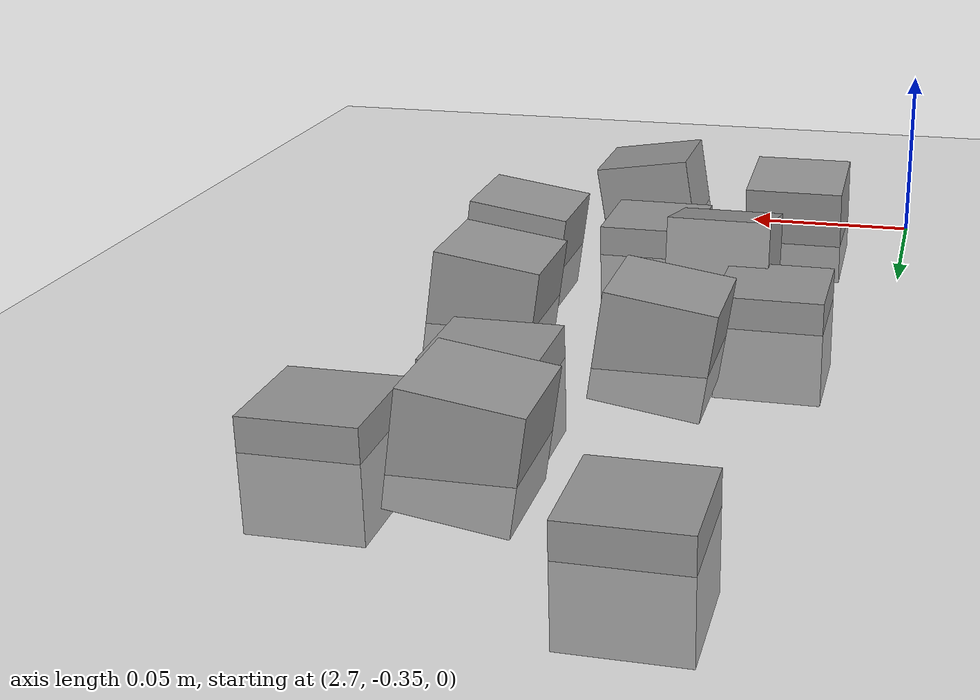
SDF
<sdf version="1.7">
 <world name="default">
  <model name="ground_plane">
   <static>1</static>
   <link name="link">
    <collision name="collision">
     <geometry><plane><normal>0 0 1</normal><size>100 100</size></plane></geometry>
     <surface><friction><ode><mu>100</mu><mu2>50</mu2></ode></friction></surface>
    </collision>
    <visual name="visual">
     <cast_shadows>0</cast_shadows>
     <geometry><plane><normal>0 0 1</normal><size>100 100</size></plane></geometry>
     <material>
      <script><uri>file://media/materials/scripts/gazebo.material</uri><name>Gazebo/Grey</name></script>
     </material>
    </visual>
   </link>
  </model>
  <model name="stone_road_9">
   <link name="link_0_clone_11">
    <inertial>
     <mass>1</mass>
     <inertia>
      <ixx>0.166667</ixx>
      <ixy>0</ixy>
      <ixz>0</ixz>
      <iyy>0.166667</iyy>
      <iyz>0</iyz>
      <izz>0.166667</izz>
     </inertia>
    </inertial>
    <pose>0.007758 0.071496 0.003778 0.2 -0 0</pose>
    <kinematic>1</kinematic>
    <visual name="visual">
     <geometry><box><size>0.03 0.03 0.03</size></box></geometry>
     <material>
      <lighting>1</lighting>
      <script><uri>file://media/materials/scripts/gazebo.material</uri><name>Gazebo/Grey</name></script>
      <shader type="pixel"><normal_map>__default__</normal_map></shader>
      <ambient>0.3 0.3 0.3 1</ambient>
      <diffuse>0.7 0.7 0.7 1</diffuse>
      <specular>0.01 0.01 0.01 1</specular>
      <emissive>0 0 0 1</emissive>
     </material>
    </visual>
    <collision name="collision">
     <geometry><box><size>0.03 0.03 0.03</size></box></geometry>
     <surface>
      <friction>
       <ode><mu>1</mu><mu2>1</mu2><fdir1>0 0 0</fdir1><slip1>0</slip1><slip2>0</slip2></ode>
       <torsional>
        <coefficient>1</coefficient>
        <patch_radius>0</patch_radius>
        <surface_radius>0</surface_radius>
        <use_patch_radius>1</use_patch_radius>
        <ode><slip>0</slip></ode>
       </torsional>
      </friction>
      <bounce><restitution_coefficient>0</restitution_coefficient><threshold>1e+06</threshold></bounce>
      <contact>
       <collide_without_contact>0</collide_without_contact>
       <collide_without_contact_bitmask>1</collide_without_contact_bitmask>
       <collide_bitmask>1</collide_bitmask>
       <ode>
        <soft_cfm>0</soft_cfm>
        <soft_erp>0.2</soft_erp>
        <kp>1e+13</kp>
        <kd>1</kd>
        <max_vel>0.01</max_vel>
        <min_depth>0</min_depth>
       </ode>
       <bullet>
        <split_impulse>1</split_impulse>
        <split_impulse_penetration_threshold>-0.01</split_impulse_penetration_threshold>
        <soft_cfm>0</soft_cfm>
        <soft_erp>0.2</soft_erp>
        <kp>1e+13</kp>
        <kd>1</kd>
       </bullet>
      </contact>
     </surface>
    </collision>
   </link>
   <link name="link_0_clone_2_clone_1">
    <inertial>
     <mass>1</mass>
     <inertia>
      <ixx>0.166667</ixx>
      <ixy>0</ixy>
      <ixz>0</ixz>
      <iyy>0.166667</iyy>
      <iyz>0</iyz>
      <izz>0.166667</izz>
     </inertia>
    </inertial>
    <pose>0.041447 0.006316 0.003778 0 0.15 0</pose>
    <kinematic>1</kinematic>
    <visual name="visual">
     <geometry><box><size>0.03 0.03 0.03</size></box></geometry>
     <material>
      <lighting>1</lighting>
      <script><uri>file://media/materials/scripts/gazebo.material</uri><name>Gazebo/Grey</name></script>
      <shader type="pixel"><normal_map>__default__</normal_map></shader>
      <ambient>0.3 0.3 0.3 1</ambient>
      <diffuse>0.7 0.7 0.7 1</diffuse>
      <specular>0.01 0.01 0.01 1</specular>
      <emissive>0 0 0 1</emissive>
     </material>
    </visual>
    <collision name="collision">
     <geometry><box><size>0.03 0.03 0.03</size></box></geometry>
     <surface>
      <friction>
       <ode><mu>1</mu><mu2>1</mu2><fdir1>0 0 0</fdir1><slip1>0</slip1><slip2>0</slip2></ode>
       <torsional>
        <coefficient>1</coefficient>
        <patch_radius>0</patch_radius>
        <surface_radius>0</surface_radius>
        <use_patch_radius>1</use_patch_radius>
        <ode><slip>0</slip></ode>
       </torsional>
      </friction>
      <bounce><restitution_coefficient>0</restitution_coefficient><threshold>1e+06</threshold></bounce>
      <contact>
       <collide_without_contact>0</collide_without_contact>
       <collide_without_contact_bitmask>1</collide_without_contact_bitmask>
       <collide_bitmask>1</collide_bitmask>
       <ode>
        <soft_cfm>0</soft_cfm>
        <soft_erp>0.2</soft_erp>
        <kp>1e+13</kp>
        <kd>1</kd>
        <max_vel>0.01</max_vel>
        <min_depth>0</min_depth>
       </ode>
       <bullet>
        <split_impulse>1</split_impulse>
        <split_impulse_penetration_threshold>-0.01</split_impulse_penetration_threshold>
        <soft_cfm>0</soft_cfm>
        <soft_erp>0.2</soft_erp>
        <kp>1e+13</kp>
        <kd>1</kd>
       </bullet>
      </contact>
     </surface>
    </collision>
   </link>
   <link name="link_0_clone_2_clone_2">
    <inertial>
     <mass>1</mass>
     <inertia>
      <ixx>0.166667</ixx>
      <ixy>0</ixy>
      <ixz>0</ixz>
      <iyy>0.166667</iyy>
      <iyz>0</iyz>
      <izz>0.166667</izz>
     </inertia>
    </inertial>
    <pose>0.066563 0.110568 0.003778 0 -0.15 0</pose>
    <kinematic>1</kinematic>
    <visual name="visual">
     <geometry><box><size>0.03 0.03 0.03</size></box></geometry>
     <material>
      <lighting>1</lighting>
      <script><uri>file://media/materials/scripts/gazebo.material</uri><name>Gazebo/Grey</name></script>
      <shader type="pixel"><normal_map>__default__</normal_map></shader>
      <ambient>0.3 0.3 0.3 1</ambient>
      <diffuse>0.7 0.7 0.7 1</diffuse>
      <specular>0.01 0.01 0.01 1</specular>
      <emissive>0 0 0 1</emissive>
     </material>
    </visual>
    <collision name="collision">
     <geometry><box><size>0.03 0.03 0.03</size></box></geometry>
     <surface>
      <friction>
       <ode><mu>1</mu><mu2>1</mu2><fdir1>0 0 0</fdir1><slip1>0</slip1><slip2>0</slip2></ode>
       <torsional>
        <coefficient>1</coefficient>
        <patch_radius>0</patch_radius>
        <surface_radius>0</surface_radius>
        <use_patch_radius>1</use_patch_radius>
        <ode><slip>0</slip></ode>
       </torsional>
      </friction>
      <bounce><restitution_coefficient>0</restitution_coefficient><threshold>1e+06</threshold></bounce>
      <contact>
       <collide_without_contact>0</collide_without_contact>
       <collide_without_contact_bitmask>1</collide_without_contact_bitmask>
       <collide_bitmask>1</collide_bitmask>
       <ode>
        <soft_cfm>0</soft_cfm>
        <soft_erp>0.2</soft_erp>
        <kp>1e+13</kp>
        <kd>1</kd>
        <max_vel>0.01</max_vel>
        <min_depth>0</min_depth>
       </ode>
       <bullet>
        <split_impulse>1</split_impulse>
        <split_impulse_penetration_threshold>-0.01</split_impulse_penetration_threshold>
        <soft_cfm>0</soft_cfm>
        <soft_erp>0.2</soft_erp>
        <kp>1e+13</kp>
        <kd>1</kd>
       </bullet>
      </contact>
     </surface>
    </collision>
   </link>
   <link name="link_0_clone_2_clone_2_clone_12">
    <inertial>
     <mass>1</mass>
     <inertia>
      <ixx>0.166667</ixx>
      <ixy>0</ixy>
      <ixz>0</ixz>
      <iyy>0.166667</iyy>
      <iyz>0</iyz>
      <izz>0.166667</izz>
     </inertia>
    </inertial>
    <pose>0.044693 0.200081 0.003778 0 -0.15 0</pose>
    <kinematic>1</kinematic>
    <visual name="visual">
     <geometry><box><size>0.03 0.03 0.03</size></box></geometry>
     <material>
      <lighting>1</lighting>
      <script><uri>file://media/materials/scripts/gazebo.material</uri><name>Gazebo/Grey</name></script>
      <shader type="pixel"><normal_map>__default__</normal_map></shader>
      <ambient>0.3 0.3 0.3 1</ambient>
      <diffuse>0.7 0.7 0.7 1</diffuse>
      <specular>0.01 0.01 0.01 1</specular>
      <emissive>0 0 0 1</emissive>
     </material>
    </visual>
    <collision name="collision">
     <geometry><box><size>0.03 0.03 0.03</size></box></geometry>
     <surface>
      <friction>
       <ode><mu>1</mu><mu2>1</mu2><fdir1>0 0 0</fdir1><slip1>0</slip1><slip2>0</slip2></ode>
       <torsional>
        <coefficient>1</coefficient>
        <patch_radius>0</patch_radius>
        <surface_radius>0</surface_radius>
        <use_patch_radius>1</use_patch_radius>
        <ode><slip>0</slip></ode>
       </torsional>
      </friction>
      <bounce><restitution_coefficient>0</restitution_coefficient><threshold>1e+06</threshold></bounce>
      <contact>
       <collide_without_contact>0</collide_without_contact>
       <collide_without_contact_bitmask>1</collide_without_contact_bitmask>
       <collide_bitmask>1</collide_bitmask>
       <ode>
        <soft_cfm>0</soft_cfm>
        <soft_erp>0.2</soft_erp>
        <kp>1e+13</kp>
        <kd>1</kd>
        <max_vel>0.01</max_vel>
        <min_depth>0</min_depth>
       </ode>
       <bullet>
        <split_impulse>1</split_impulse>
        <split_impulse_penetration_threshold>-0.01</split_impulse_penetration_threshold>
        <soft_cfm>0</soft_cfm>
        <soft_erp>0.2</soft_erp>
        <kp>1e+13</kp>
        <kd>1</kd>
       </bullet>
      </contact>
     </surface>
    </collision>
   </link>
   <link name="link_0_clone_2_clone_2_clone_13">
    <inertial>
     <mass>1</mass>
     <inertia>
      <ixx>0.166667</ixx>
      <ixy>0</ixy>
      <ixz>0</ixz>
      <iyy>0.166667</iyy>
      <iyz>0</iyz>
      <izz>0.166667</izz>
     </inertia>
    </inertial>
    <pose>0.014407 0.13189 0.003778 0 -0.15 0</pose>
    <kinematic>1</kinematic>
    <visual name="visual">
     <geometry><box><size>0.03 0.03 0.03</size></box></geometry>
     <material>
      <lighting>1</lighting>
      <script><uri>file://media/materials/scripts/gazebo.material</uri><name>Gazebo/Grey</name></script>
      <shader type="pixel"><normal_map>__default__</normal_map></shader>
      <ambient>0.3 0.3 0.3 1</ambient>
      <diffuse>0.7 0.7 0.7 1</diffuse>
      <specular>0.01 0.01 0.01 1</specular>
      <emissive>0 0 0 1</emissive>
     </material>
    </visual>
    <collision name="collision">
     <geometry><box><size>0.03 0.03 0.03</size></box></geometry>
     <surface>
      <friction>
       <ode><mu>1</mu><mu2>1</mu2><fdir1>0 0 0</fdir1><slip1>0</slip1><slip2>0</slip2></ode>
       <torsional>
        <coefficient>1</coefficient>
        <patch_radius>0</patch_radius>
        <surface_radius>0</surface_radius>
        <use_patch_radius>1</use_patch_radius>
        <ode><slip>0</slip></ode>
       </torsional>
      </friction>
      <bounce><restitution_coefficient>0</restitution_coefficient><threshold>1e+06</threshold></bounce>
      <contact>
       <collide_without_contact>0</collide_without_contact>
       <collide_without_contact_bitmask>1</collide_without_contact_bitmask>
       <collide_bitmask>1</collide_bitmask>
       <ode>
        <soft_cfm>0</soft_cfm>
        <soft_erp>0.2</soft_erp>
        <kp>1e+13</kp>
        <kd>1</kd>
        <max_vel>0.01</max_vel>
        <min_depth>0</min_depth>
       </ode>
       <bullet>
        <split_impulse>1</split_impulse>
        <split_impulse_penetration_threshold>-0.01</split_impulse_penetration_threshold>
        <soft_cfm>0</soft_cfm>
        <soft_erp>0.2</soft_erp>
        <kp>1e+13</kp>
        <kd>1</kd>
       </bullet>
      </contact>
     </surface>
    </collision>
   </link>
   <link name="link_0_clone_2_clone_2_clone_13_clone_clone_16_clone">
    <inertial>
     <mass>1</mass>
     <inertia>
      <ixx>0.166667</ixx>
      <ixy>0</ixy>
      <ixz>0</ixz>
      <iyy>0.166667</iyy>
      <iyz>0</iyz>
      <izz>0.166667</izz>
     </inertia>
    </inertial>
    <pose>0.0535 0.156403 -0.006222 0 -0 0</pose>
    <kinematic>1</kinematic>
    <visual name="visual">
     <geometry><box><size>0.03 0.03 0.03</size></box></geometry>
     <material>
      <lighting>1</lighting>
      <script><uri>file://media/materials/scripts/gazebo.material</uri><name>Gazebo/Grey</name></script>
      <shader type="pixel"><normal_map>__default__</normal_map></shader>
      <ambient>0.3 0.3 0.3 1</ambient>
      <diffuse>0.7 0.7 0.7 1</diffuse>
      <specular>0.01 0.01 0.01 1</specular>
      <emissive>0 0 0 1</emissive>
     </material>
    </visual>
    <collision name="collision">
     <geometry><box><size>0.03 0.03 0.03</size></box></geometry>
     <surface>
      <friction>
       <ode><mu>1</mu><mu2>1</mu2><fdir1>0 0 0</fdir1><slip1>0</slip1><slip2>0</slip2></ode>
       <torsional>
        <coefficient>1</coefficient>
        <patch_radius>0</patch_radius>
        <surface_radius>0</surface_radius>
        <use_patch_radius>1</use_patch_radius>
        <ode><slip>0</slip></ode>
       </torsional>
      </friction>
      <bounce><restitution_coefficient>0</restitution_coefficient><threshold>1e+06</threshold></bounce>
      <contact>
       <collide_without_contact>0</collide_without_contact>
       <collide_without_contact_bitmask>1</collide_without_contact_bitmask>
       <collide_bitmask>1</collide_bitmask>
       <ode>
        <soft_cfm>0</soft_cfm>
        <soft_erp>0.2</soft_erp>
        <kp>1e+13</kp>
        <kd>1</kd>
        <max_vel>0.01</max_vel>
        <min_depth>0</min_depth>
       </ode>
       <bullet>
        <split_impulse>1</split_impulse>
        <split_impulse_penetration_threshold>-0.01</split_impulse_penetration_threshold>
        <soft_cfm>0</soft_cfm>
        <soft_erp>0.2</soft_erp>
        <kp>1e+13</kp>
        <kd>1</kd>
       </bullet>
      </contact>
     </surface>
    </collision>
   </link>
   <link name="link_0_clone_2_clone_2_clone_13_clone_clone_16_clone_0">
    <inertial>
     <mass>1</mass>
     <inertia>
      <ixx>0.166667</ixx>
      <ixy>0</ixy>
      <ixz>0</ixz>
      <iyy>0.166667</iyy>
      <iyz>0</iyz>
      <izz>0.166667</izz>
     </inertia>
    </inertial>
    <pose>-0.010782 0.09679 -0.006222 0 -0 0</pose>
    <kinematic>1</kinematic>
    <visual name="visual">
     <geometry><box><size>0.03 0.03 0.03</size></box></geometry>
     <material>
      <lighting>1</lighting>
      <script><uri>file://media/materials/scripts/gazebo.material</uri><name>Gazebo/Grey</name></script>
      <shader type="pixel"><normal_map>__default__</normal_map></shader>
      <ambient>0.3 0.3 0.3 1</ambient>
      <diffuse>0.7 0.7 0.7 1</diffuse>
      <specular>0.01 0.01 0.01 1</specular>
      <emissive>0 0 0 1</emissive>
     </material>
    </visual>
    <collision name="collision">
     <geometry><box><size>0.03 0.03 0.03</size></box></geometry>
     <surface>
      <friction>
       <ode><mu>1</mu><mu2>1</mu2><fdir1>0 0 0</fdir1><slip1>0</slip1><slip2>0</slip2></ode>
       <torsional>
        <coefficient>1</coefficient>
        <patch_radius>0</patch_radius>
        <surface_radius>0</surface_radius>
        <use_patch_radius>1</use_patch_radius>
        <ode><slip>0</slip></ode>
       </torsional>
      </friction>
      <bounce><restitution_coefficient>0</restitution_coefficient><threshold>1e+06</threshold></bounce>
      <contact>
       <collide_without_contact>0</collide_without_contact>
       <collide_without_contact_bitmask>1</collide_without_contact_bitmask>
       <collide_bitmask>1</collide_bitmask>
       <ode>
        <soft_cfm>0</soft_cfm>
        <soft_erp>0.2</soft_erp>
        <kp>1e+13</kp>
        <kd>1</kd>
        <max_vel>0.01</max_vel>
        <min_depth>0</min_depth>
       </ode>
       <bullet>
        <split_impulse>1</split_impulse>
        <split_impulse_penetration_threshold>-0.01</split_impulse_penetration_threshold>
        <soft_cfm>0</soft_cfm>
        <soft_erp>0.2</soft_erp>
        <kp>1e+13</kp>
        <kd>1</kd>
       </bullet>
      </contact>
     </surface>
    </collision>
   </link>
   <link name="link_0_clone_2_clone_2_clone_13_clone_clone_16_clone_1">
    <inertial>
     <mass>1</mass>
     <inertia>
      <ixx>0.166667</ixx>
      <ixy>0</ixy>
      <ixz>0</ixz>
      <iyy>0.166667</iyy>
      <iyz>0</iyz>
      <izz>0.166667</izz>
     </inertia>
    </inertial>
    <pose>0.033787 0.042837 -0.006222 0 -0 0</pose>
    <kinematic>1</kinematic>
    <visual name="visual">
     <geometry><box><size>0.03 0.03 0.03</size></box></geometry>
     <material>
      <lighting>1</lighting>
      <script><uri>file://media/materials/scripts/gazebo.material</uri><name>Gazebo/Grey</name></script>
      <shader type="pixel"><normal_map>__default__</normal_map></shader>
      <ambient>0.3 0.3 0.3 1</ambient>
      <diffuse>0.7 0.7 0.7 1</diffuse>
      <specular>0.01 0.01 0.01 1</specular>
      <emissive>0 0 0 1</emissive>
     </material>
    </visual>
    <collision name="collision">
     <geometry><box><size>0.03 0.03 0.03</size></box></geometry>
     <surface>
      <friction>
       <ode><mu>1</mu><mu2>1</mu2><fdir1>0 0 0</fdir1><slip1>0</slip1><slip2>0</slip2></ode>
       <torsional>
        <coefficient>1</coefficient>
        <patch_radius>0</patch_radius>
        <surface_radius>0</surface_radius>
        <use_patch_radius>1</use_patch_radius>
        <ode><slip>0</slip></ode>
       </torsional>
      </friction>
      <bounce><restitution_coefficient>0</restitution_coefficient><threshold>1e+06</threshold></bounce>
      <contact>
       <collide_without_contact>0</collide_without_contact>
       <collide_without_contact_bitmask>1</collide_without_contact_bitmask>
       <collide_bitmask>1</collide_bitmask>
       <ode>
        <soft_cfm>0</soft_cfm>
        <soft_erp>0.2</soft_erp>
        <kp>1e+13</kp>
        <kd>1</kd>
        <max_vel>0.01</max_vel>
        <min_depth>0</min_depth>
       </ode>
       <bullet>
        <split_impulse>1</split_impulse>
        <split_impulse_penetration_threshold>-0.01</split_impulse_penetration_threshold>
        <soft_cfm>0</soft_cfm>
        <soft_erp>0.2</soft_erp>
        <kp>1e+13</kp>
        <kd>1</kd>
       </bullet>
      </contact>
     </surface>
    </collision>
   </link>
   <link name="link_0_clone_2_clone_2_clone_13_clone_clone_16_clone_23">
    <inertial>
     <mass>1</mass>
     <inertia>
      <ixx>0.166667</ixx>
      <ixy>0</ixy>
      <ixz>0</ixz>
      <iyy>0.166667</iyy>
      <iyz>0</iyz>
      <izz>0.166667</izz>
     </inertia>
    </inertial>
    <pose>0.000385 0.228664 -0.006222 0 -0 0</pose>
    <kinematic>1</kinematic>
    <visual name="visual">
     <geometry><box><size>0.03 0.03 0.03</size></box></geometry>
     <material>
      <lighting>1</lighting>
      <script><uri>file://media/materials/scripts/gazebo.material</uri><name>Gazebo/Grey</name></script>
      <shader type="pixel"><normal_map>__default__</normal_map></shader>
      <ambient>0.3 0.3 0.3 1</ambient>
      <diffuse>0.7 0.7 0.7 1</diffuse>
      <specular>0.01 0.01 0.01 1</specular>
      <emissive>0 0 0 1</emissive>
     </material>
    </visual>
    <collision name="collision">
     <geometry><box><size>0.03 0.03 0.03</size></box></geometry>
     <surface>
      <friction>
       <ode><mu>1</mu><mu2>1</mu2><fdir1>0 0 0</fdir1><slip1>0</slip1><slip2>0</slip2></ode>
       <torsional>
        <coefficient>1</coefficient>
        <patch_radius>0</patch_radius>
        <surface_radius>0</surface_radius>
        <use_patch_radius>1</use_patch_radius>
        <ode><slip>0</slip></ode>
       </torsional>
      </friction>
      <bounce><restitution_coefficient>0</restitution_coefficient><threshold>1e+06</threshold></bounce>
      <contact>
       <collide_without_contact>0</collide_without_contact>
       <collide_without_contact_bitmask>1</collide_without_contact_bitmask>
       <collide_bitmask>1</collide_bitmask>
       <ode>
        <soft_cfm>0</soft_cfm>
        <soft_erp>0.2</soft_erp>
        <kp>1e+13</kp>
        <kd>1</kd>
        <max_vel>0.01</max_vel>
        <min_depth>0</min_depth>
       </ode>
       <bullet>
        <split_impulse>1</split_impulse>
        <split_impulse_penetration_threshold>-0.01</split_impulse_penetration_threshold>
        <soft_cfm>0</soft_cfm>
        <soft_erp>0.2</soft_erp>
        <kp>1e+13</kp>
        <kd>1</kd>
       </bullet>
      </contact>
     </surface>
    </collision>
   </link>
   <link name="link_0_clone_2_clone_2_clone_13_clone_clone_16_clone_24">
    <inertial>
     <mass>1</mass>
     <inertia>
      <ixx>0.166667</ixx>
      <ixy>0</ixy>
      <ixz>0</ixz>
      <iyy>0.166667</iyy>
      <iyz>0</iyz>
      <izz>0.166667</izz>
     </inertia>
    </inertial>
    <pose>0.08246 0.196776 -0.006222 0 -0 0</pose>
    <kinematic>1</kinematic>
    <visual name="visual">
     <geometry><box><size>0.03 0.03 0.03</size></box></geometry>
     <material>
      <lighting>1</lighting>
      <script><uri>file://media/materials/scripts/gazebo.material</uri><name>Gazebo/Grey</name></script>
      <shader type="pixel"><normal_map>__default__</normal_map></shader>
      <ambient>0.3 0.3 0.3 1</ambient>
      <diffuse>0.7 0.7 0.7 1</diffuse>
      <specular>0.01 0.01 0.01 1</specular>
      <emissive>0 0 0 1</emissive>
     </material>
    </visual>
    <collision name="collision">
     <geometry><box><size>0.03 0.03 0.03</size></box></geometry>
     <surface>
      <friction>
       <ode><mu>1</mu><mu2>1</mu2><fdir1>0 0 0</fdir1><slip1>0</slip1><slip2>0</slip2></ode>
       <torsional>
        <coefficient>1</coefficient>
        <patch_radius>0</patch_radius>
        <surface_radius>0</surface_radius>
        <use_patch_radius>1</use_patch_radius>
        <ode><slip>0</slip></ode>
       </torsional>
      </friction>
      <bounce><restitution_coefficient>0</restitution_coefficient><threshold>1e+06</threshold></bounce>
      <contact>
       <collide_without_contact>0</collide_without_contact>
       <collide_without_contact_bitmask>1</collide_without_contact_bitmask>
       <collide_bitmask>1</collide_bitmask>
       <ode>
        <soft_cfm>0</soft_cfm>
        <soft_erp>0.2</soft_erp>
        <kp>1e+13</kp>
        <kd>1</kd>
        <max_vel>0.01</max_vel>
        <min_depth>0</min_depth>
       </ode>
       <bullet>
        <split_impulse>1</split_impulse>
        <split_impulse_penetration_threshold>-0.01</split_impulse_penetration_threshold>
        <soft_cfm>0</soft_cfm>
        <soft_erp>0.2</soft_erp>
        <kp>1e+13</kp>
        <kd>1</kd>
       </bullet>
      </contact>
     </surface>
    </collision>
   </link>
   <link name="link_0_clone_2_clone_2_clone_13_clone_clone_3">
    <inertial>
     <mass>1</mass>
     <inertia>
      <ixx>0.166667</ixx>
      <ixy>0</ixy>
      <ixz>0</ixz>
      <iyy>0.166667</iyy>
      <iyz>0</iyz>
      <izz>0.166667</izz>
     </inertia>
    </inertial>
    <pose>-0.008408 0.020239 0.003778 -0.1 0 0</pose>
    <kinematic>1</kinematic>
    <visual name="visual">
     <geometry><box><size>0.03 0.03 0.03</size></box></geometry>
     <material>
      <lighting>1</lighting>
      <script><uri>file://media/materials/scripts/gazebo.material</uri><name>Gazebo/Grey</name></script>
      <shader type="pixel"><normal_map>__default__</normal_map></shader>
      <ambient>0.3 0.3 0.3 1</ambient>
      <diffuse>0.7 0.7 0.7 1</diffuse>
      <specular>0.01 0.01 0.01 1</specular>
      <emissive>0 0 0 1</emissive>
     </material>
    </visual>
    <collision name="collision">
     <geometry><box><size>0.03 0.03 0.03</size></box></geometry>
     <surface>
      <friction>
       <ode><mu>1</mu><mu2>1</mu2><fdir1>0 0 0</fdir1><slip1>0</slip1><slip2>0</slip2></ode>
       <torsional>
        <coefficient>1</coefficient>
        <patch_radius>0</patch_radius>
        <surface_radius>0</surface_radius>
        <use_patch_radius>1</use_patch_radius>
        <ode><slip>0</slip></ode>
       </torsional>
      </friction>
      <bounce><restitution_coefficient>0</restitution_coefficient><threshold>1e+06</threshold></bounce>
      <contact>
       <collide_without_contact>0</collide_without_contact>
       <collide_without_contact_bitmask>1</collide_without_contact_bitmask>
       <collide_bitmask>1</collide_bitmask>
       <ode>
        <soft_cfm>0</soft_cfm>
        <soft_erp>0.2</soft_erp>
        <kp>1e+13</kp>
        <kd>1</kd>
        <max_vel>0.01</max_vel>
        <min_depth>0</min_depth>
       </ode>
       <bullet>
        <split_impulse>1</split_impulse>
        <split_impulse_penetration_threshold>-0.01</split_impulse_penetration_threshold>
        <soft_cfm>0</soft_cfm>
        <soft_erp>0.2</soft_erp>
        <kp>1e+13</kp>
        <kd>1</kd>
       </bullet>
      </contact>
     </surface>
    </collision>
   </link>
   <link name="link_0_clone_2_clone_2_clone_9">
    <inertial>
     <mass>1</mass>
     <inertia>
      <ixx>0.166667</ixx>
      <ixy>0</ixy>
      <ixz>0</ixz>
      <iyy>0.166667</iyy>
      <iyz>0</iyz>
      <izz>0.166667</izz>
     </inertia>
    </inertial>
    <pose>0.071478 0.063212 0.003778 0 -0.15 0</pose>
    <kinematic>1</kinematic>
    <visual name="visual">
     <geometry><box><size>0.03 0.03 0.03</size></box></geometry>
     <material>
      <lighting>1</lighting>
      <script><uri>file://media/materials/scripts/gazebo.material</uri><name>Gazebo/Grey</name></script>
      <shader type="pixel"><normal_map>__default__</normal_map></shader>
      <ambient>0.3 0.3 0.3 1</ambient>
      <diffuse>0.7 0.7 0.7 1</diffuse>
      <specular>0.01 0.01 0.01 1</specular>
      <emissive>0 0 0 1</emissive>
     </material>
    </visual>
    <collision name="collision">
     <geometry><box><size>0.03 0.03 0.03</size></box></geometry>
     <surface>
      <friction>
       <ode><mu>1</mu><mu2>1</mu2><fdir1>0 0 0</fdir1><slip1>0</slip1><slip2>0</slip2></ode>
       <torsional>
        <coefficient>1</coefficient>
        <patch_radius>0</patch_radius>
        <surface_radius>0</surface_radius>
        <use_patch_radius>1</use_patch_radius>
        <ode><slip>0</slip></ode>
       </torsional>
      </friction>
      <bounce><restitution_coefficient>0</restitution_coefficient><threshold>1e+06</threshold></bounce>
      <contact>
       <collide_without_contact>0</collide_without_contact>
       <collide_without_contact_bitmask>1</collide_without_contact_bitmask>
       <collide_bitmask>1</collide_bitmask>
       <ode>
        <soft_cfm>0</soft_cfm>
        <soft_erp>0.2</soft_erp>
        <kp>1e+13</kp>
        <kd>1</kd>
        <max_vel>0.01</max_vel>
        <min_depth>0</min_depth>
       </ode>
       <bullet>
        <split_impulse>1</split_impulse>
        <split_impulse_penetration_threshold>-0.01</split_impulse_penetration_threshold>
        <soft_cfm>0</soft_cfm>
        <soft_erp>0.2</soft_erp>
        <kp>1e+13</kp>
        <kd>1</kd>
       </bullet>
      </contact>
     </surface>
    </collision>
   </link>
   <static>0</static>
   <pose>2.743 -0.362549 -0 0 -0 0</pose>
  </model>
 </world>
</sdf>
